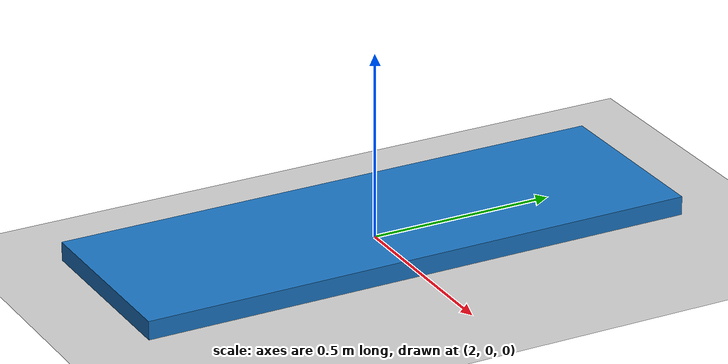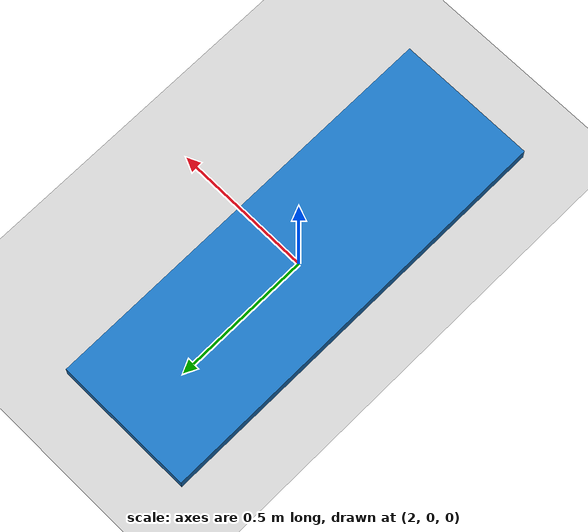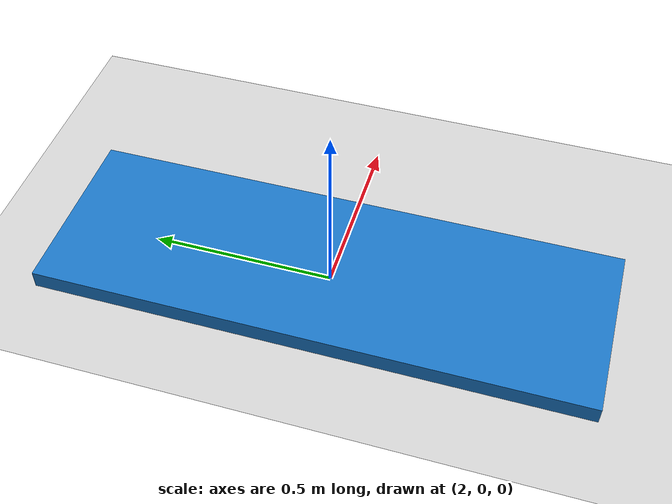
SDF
<?xml version="1.0"?>
<sdf version="1.6">
  <world name="step_50mm">
    <gravity>0 0 -9.81</gravity>
    <physics name="default_physics" default="0" type="ode">
      <max_step_size>0.001</max_step_size>
      <real_time_update_rate>1000</real_time_update_rate>
      <ode>
        <solver><type>quick</type><iters>100</iters><sor>1.3</sor><use_dynamic_moi_rescaling>true</use_dynamic_moi_rescaling></solver>
        <constraints><cfm>0.0</cfm><erp>0.2</erp><contact_max_correcting_vel>0.1</contact_max_correcting_vel><contact_surface_layer>0.001</contact_surface_layer></constraints>
      </ode>
    </physics>
    <include><uri>model://ground_plane</uri></include>
    <include><uri>model://sun</uri></include>
    <model name="step_50mm">
      <static>true</static>
      <pose>2.0 0.0 0.025 0 0 0</pose>
      <link name="link">
        <collision name="collision"><geometry><box><size>0.50 1.50 0.05</size></box></geometry></collision>
        <visual name="visual"><geometry><box><size>0.50 1.50 0.05</size></box></geometry><material><ambient>0.10 0.45 0.75 1</ambient></material></visual>
      </link>
    </model>
  </world>
</sdf>
